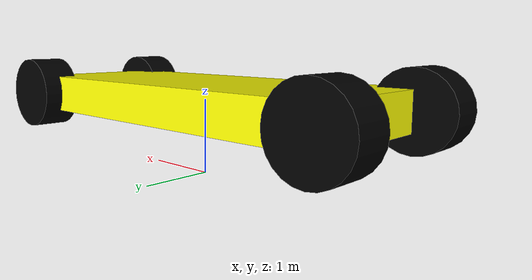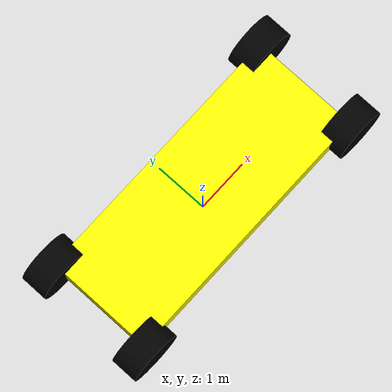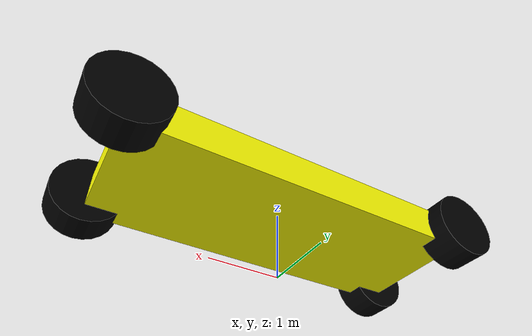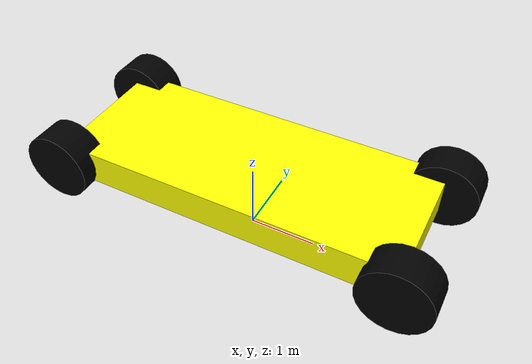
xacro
<?xml version="1.0"?>
<robot name="Robo_Car" xmlns:xacro="http://www.ros.org/wiki/xacro">

<xacro:macro name="inertial_matrix" params="mass">
        <inertial>
            <mass value="${mass}" />
                <inertia ixx="100" ixy="0.0" ixz="0.0"
                        iyy="100" iyz="0.0"
                        izz="100" />
        </inertial>
</xacro:macro> -->

<xacro:macro name="transmission_block" params="joint_name">
	  <transmission name="tran1">
	    <type>transmission_interface/SimpleTransmission</type>
	    <joint name="${joint_name}">
	      <hardwareInterface>hardware_interface/VelocityJointInterface</hardwareInterface>
	    </joint>
	    <actuator name="${joint_name}_motor">
	      <hardwareInterface>EffortJointInterface</hardwareInterface>
	      <mechanicalReduction>1</mechanicalReduction>
	    </actuator>
	  </transmission>
</xacro:macro>

    <material name="Black">
        <color rgba="0.0 0.0 0.0 1.0"/>
    </material>
    <material name="White">
        <color rgba="1.0 1.0 1.0 1.0"/>
    </material>
    <material name="Yellow">
        <color rgba="1.0 1.0 0.0 1.0"/>
    </material>

    <link name="base_link">
        <visual>
            <geometry>
                <box size="5.0 2.0 0.5"/>
            </geometry>
            <origin rpy="0 0 0" xyz="0 0 1.0"/>
            <material name="Yellow"/>
        </visual>
        <xacro:inertial_matrix mass="1.0"/>
        <collision>
            <geometry>
                <box size="5.0 1.0 0.5"/>
            </geometry>
            <origin rpy="0 0 0" xyz="0 0 1.0"/>
        </collision>
        <gazebo reference="base_link">
            <material>Gazebo/Yellow</material>
        </gazebo>
    </link>

    <link name="right_front">
        <visual>
            <geometry>
                <cylinder length="0.5" radius="0.5"/>
            </geometry>
            <origin rpy="1.57 0 0" xyz="0 0 0"/>
            <material name="Black"/>
        </visual>
        <xacro:inertial_matrix mass="1.0"/>
        <collision>
            <geometry>
                <cylinder length="0.5" radius="0.5"/>
            </geometry>
            <origin rpy="1.57 0 0" xyz="0 0 0"/>
        </collision>
        <gazebo reference="right_front">
            <material>Black</material>
        </gazebo>
    </link>

    <joint name="right_front_joint" type="continuous">
        <parent link="base_link"/>
        <child link="right_front"/>
	<origin rpy="0 0 0" xyz="2.5 1.0 1.0"/>
        <axis rpy="0  0" xyz="0 1 0"/>
        <limit effort="180" velocity="100"/>
        <dynamic damping="0.0" friction="0.0"/>
    </joint>

    <link name="left_front">
        <visual>
            <geometry>
                <cylinder length="0.5" radius="0.5"/>
            </geometry>
            <origin rpy="1.57 0 0" xyz="0 0 0"/>
            <material name="Black"/>
        </visual>
        <xacro:inertial_matrix mass="1.0"/>
        <collision>
            <geometry>
                <cylinder length="0.5" radius="0.5"/>
            </geometry>
            <origin rpy="1.57 0 0" xyz="0 0 0"/>
        </collision>
        <gazebo reference="left_front">
            <material>Black</material>
        </gazebo>
    </link>

    <joint name="left_front_joint" type="continuous">
        <parent link="base_link"/>
        <child link="left_front"/>
	<origin rpy="0 0 0" xyz="2.5 -1.0 1.0"/>
        <axis rpy="0  0" xyz="0 1 0"/>
        <limit effort="180" velocity="100"/>
        <dynamic damping="0.0" friction="0.0"/>
    </joint>

    <link name="right_back">
        <visual>
            <geometry>
                <cylinder length="0.5" radius="0.5"/>
            </geometry>
            <origin rpy="1.57 0 0" xyz="0 0 0"/>
            <material name="Black"/>
        </visual>
        <xacro:inertial_matrix mass="1.0"/>
        <collision>
            <geometry>
                <cylinder length="0.5" radius="0.5"/>
            </geometry>
            <origin rpy="1.57 0 0" xyz="0 0 0"/>
        </collision>
        <gazebo reference="right_back">
            <material>Black</material>
        </gazebo>
    </link>

    <joint name="right_back_joint" type="continuous">
        <parent link="base_link"/>
        <child link="right_back"/>
	<origin rpy="0 0 0" xyz="-2.5 -1.0 1.0"/>
        <axis rpy="0  0" xyz="0 1 0"/>
        <limit effort="180" velocity="100"/>
        <dynamic damping="0.0" friction="0.0"/>
    </joint>

    <link name="left_back">
        <visual>
            <geometry>
                <cylinder length="0.5" radius="0.5"/>
            </geometry>
            <origin rpy="1.57 0 0" xyz="0 0 0"/>
            <material name="Black"/>
        </visual>
        <xacro:inertial_matrix mass="0.5"/>
        <collision>
            <geometry>
                <cylinder length="0.5" radius="0.5"/>
            </geometry>
            <origin rpy="1.57 0 0" xyz="0 0 0"/>
        </collision>
        <gazebo reference="left_back">
            <material>Black</material>
        </gazebo>
    </link>

    <joint name="left_back_joint" type="continuous">
        <parent link="base_link"/>
        <child link="left_back"/>
	<origin rpy="0 0 0" xyz="-2.5 1.0 1.0"/>
        <axis rpy="0  0" xyz="0 1 0"/>
        <limit effort="180" velocity="100"/>
        <dynamic damping="0.0" friction="0.0"/>
    </joint>

    <xacro:transmission_block joint_name="right_back_joint"/>
    <xacro:transmission_block joint_name="left_back_joint"/>

    <gazebo>
        <plugin name="differential_drive_controller" filename="libgazebo_ros_diff_drive.so">
            <rosDebugLevel>Debug</rosDebugLevel>
            <publishWheelTF>false</publishWheelTF>
            <robotNamespace>/</robotNamespace>
            <publishTf>1</publishTf>
            <publishWheelJointState>false</publishWheelJointState>
            <alwaysOn>true</alwaysOn>
            <updateRate>100.0</updateRate>
            <leftJoint>left_back_joint</leftJoint>
            <rightJoint>right_back_joint</rightJoint>
            <wheelSeparation>1.0</wheelSeparation>
            <wheelDiameter>2.0</wheelDiameter>
            <broadcastTF>1</broadcastTF>
            <wheelTorque>30</wheelTorque>
            <wheelAcceleration>2.0</wheelAcceleration>
            <commandTopic>cmd_vel</commandTopic>
            <odometryFrame>odom</odometryFrame>
            <odometryTopic>odom</odometryTopic>
            <robotBaseFrame>base_link</robotBaseFrame>
        </plugin>
    </gazebo>

</robot>
